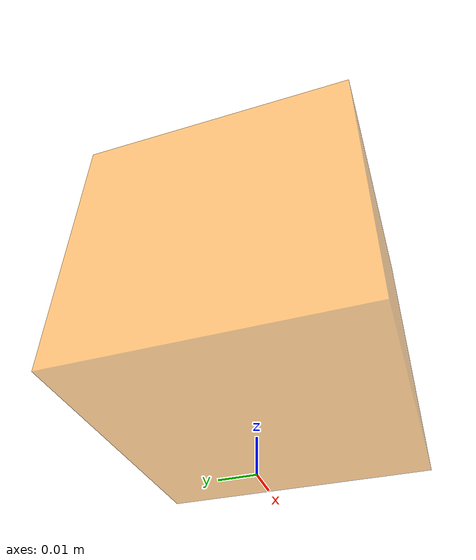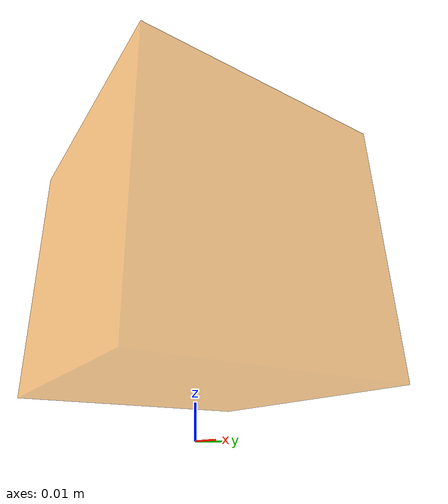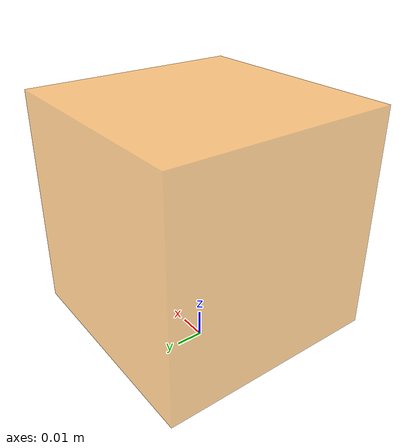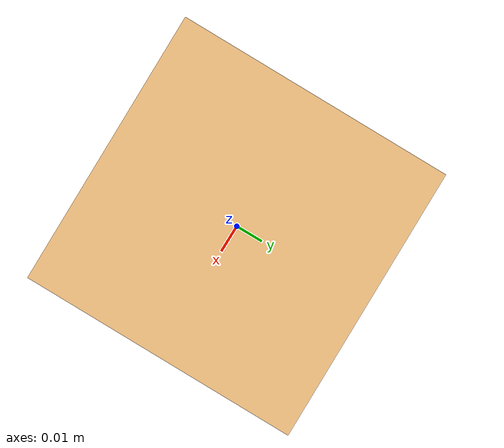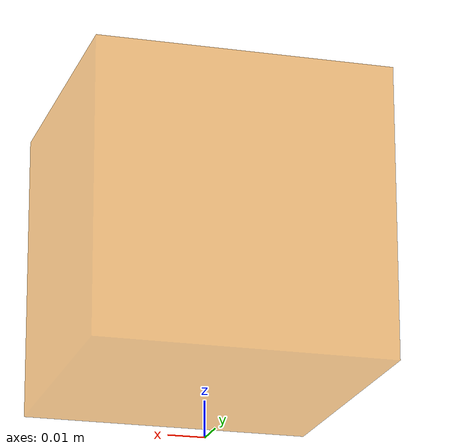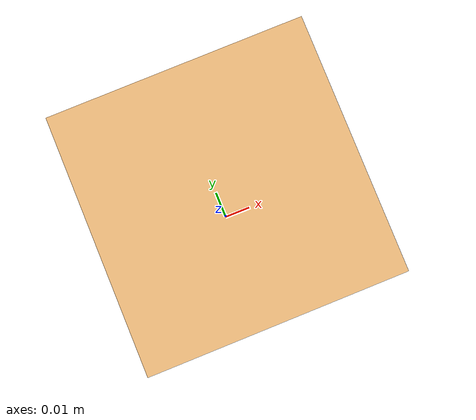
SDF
<sdf version="1.7">
    <model name="box">
        <pose>0 0 0.053 0 0 0</pose>
        <link name="box_link">
            <inertial>
                <inertia>
                    <ixx>0.000128</ixx>
                    <iyy>0.000128</iyy>
                    <izz>0.000128</izz>
                </inertia>
                <mass>0.12</mass>
            </inertial>

            <!-- Box Collision -->
            <collision name="collision_box">
                <geometry>
                    <box>
                        <size>0.08 0.08 0.08</size>
                    </box>
                </geometry>
                <drake:proximity_properties>
                    <drake:compliant_hydroelastic/>
                    <drake:hydroelastic_modulus>1e7</drake:hydroelastic_modulus>
                    <drake:mu_dynamic>0.4</drake:mu_dynamic>
                    <drake:hunt_crossley_dissipation>10.25</drake:hunt_crossley_dissipation>
                </drake:proximity_properties>
            </collision>

            <!-- Box Visual -->
            <visual name="visual_box">
                <geometry>
                    <box>
                        <size>0.08 0.08 0.08</size>
                    </box>
                </geometry>
                <material>
                    <diffuse>1.0 0.55 0.0 0.5</diffuse>
                </material>
            </visual>
       </link>
    </model>
</sdf>

            <!-- Visuals for spheres -->
            <visual name="visual_sphere_1">
                <pose>-0.04 -0.04 -0.04 0 0 0</pose>
                <geometry>
                    <sphere>
                        <radius>0.001</radius>
                    </sphere>
                </geometry>
                <material>
                    <diffuse>0.5 0.5 0.5 1.0</diffuse>
                </material>
            </visual>

            <visual name="visual_sphere_2">
                <pose>0.04 -0.04 -0.04 0 0 0</pose>
                <geometry>
                    <sphere>
                        <radius>0.001</radius>
                    </sphere>
                </geometry>
                <material>
                    <diffuse>0.5 0.5 0.5 1.0</diffuse>
                </material>
            </visual>

            <visual name="visual_sphere_3">
                <pose>-0.04 0.04 -0.04 0 0 0</pose>
                <geometry>
                    <sphere>
                        <radius>0.001</radius>
                    </sphere>
                </geometry>
                <material>
                    <diffuse>0.5 0.5 0.5 1.0</diffuse>
                </material>
            </visual>

            <visual name="visual_sphere_4">
                <pose>0.04 0.04 -0.04 0 0 0</pose>
                <geometry>
                    <sphere>
                        <radius>0.001</radius>
                    </sphere>
                </geometry>
                <material>
                    <diffuse>0.5 0.5 0.5 1.0</diffuse>
                </material>
            </visual>

<drake:mesh_resolution_hint>5.05</drake:mesh_resolution_hint>
